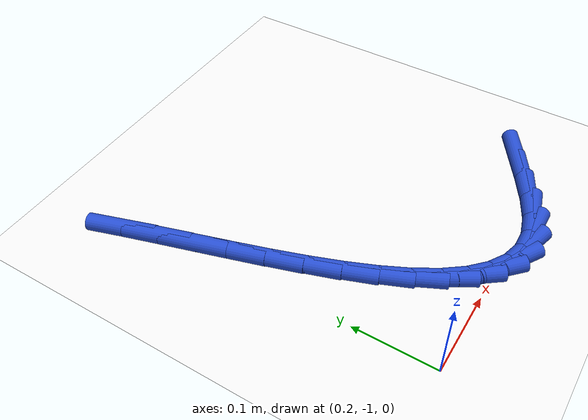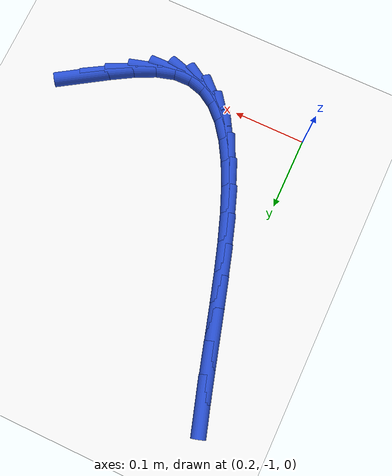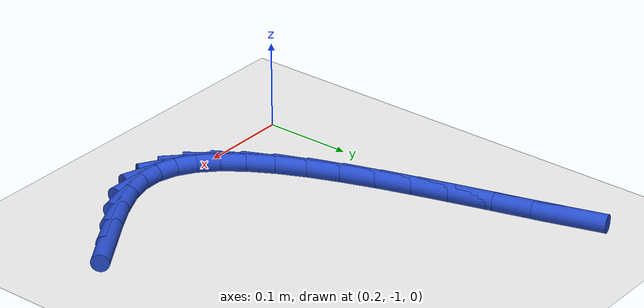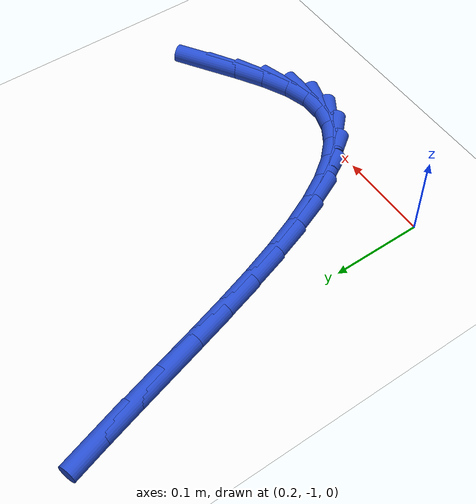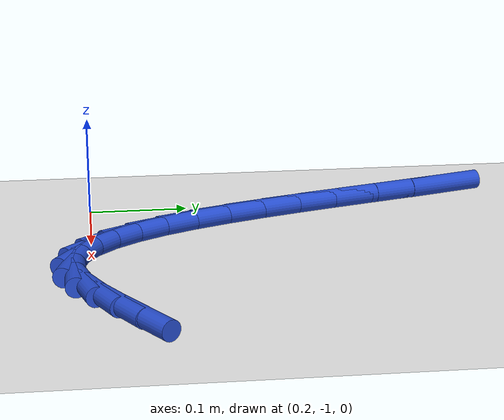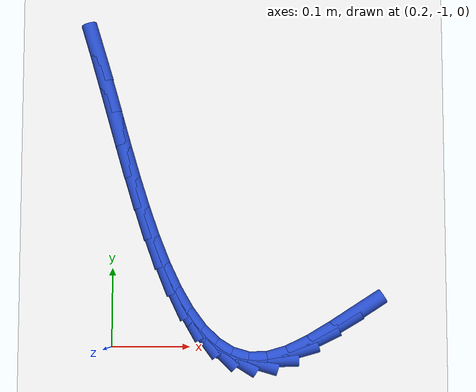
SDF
<sdf version="1.6">
 <world name="default">
  <model name="ground_plane">
   <static>1</static>
   <link name="link">
    <collision name="collision">
     <geometry><plane><normal>0 0 1</normal><size>100 100</size></plane></geometry>
     <surface><friction><ode><mu>100</mu><mu2>50</mu2></ode></friction></surface>
    </collision>
    <visual name="visual">
     <cast_shadows>0</cast_shadows>
     <geometry><plane><normal>0 0 1</normal><size>100 100</size></plane></geometry>
     <material>
      <script><uri>file://media/materials/scripts/gazebo.material</uri><name>Gazebo/WhiteGlow</name></script>
     </material>
    </visual>
   </link>
  </model>
  <model name="line">
   <link name="link_193">
    <pose>0.5134934722347396 -0.9565108255481362 0.01 0 1.57 0.5739904210011332</pose>
    <collision name="collision">
     <geometry><cylinder><radius>0.01</radius><length>0.08</length></cylinder></geometry>
    </collision>
    <visual name="visual">
     <material>
      <script><name>Gazebo/Blue</name><uri>file://media/materials/scripts/gazebo.material</uri></script>
     </material>
     <geometry><cylinder><radius>0.01</radius><length>0.08</length></cylinder></geometry>
    </visual>
   </link>
   <link name="link_194">
    <pose>0.4830046410796609 -0.9762252960613446 0.01 0 1.57 0.5385443087220603</pose>
    <collision name="collision">
     <geometry><cylinder><radius>0.01</radius><length>0.08</length></cylinder></geometry>
    </collision>
    <visual name="visual">
     <material>
      <script><name>Gazebo/Blue</name><uri>file://media/materials/scripts/gazebo.material</uri></script>
     </material>
     <geometry><cylinder><radius>0.01</radius><length>0.08</length></cylinder></geometry>
    </visual>
   </link>
   <link name="link_195">
    <pose>0.453387443628413 -0.9939201677609915 0.01 0 1.57 0.4501257307473294</pose>
    <collision name="collision">
     <geometry><cylinder><radius>0.01</radius><length>0.08</length></cylinder></geometry>
    </collision>
    <visual name="visual">
     <material>
      <script><name>Gazebo/Blue</name><uri>file://media/materials/scripts/gazebo.material</uri></script>
     </material>
     <geometry><cylinder><radius>0.01</radius><length>0.08</length></cylinder></geometry>
    </visual>
   </link>
   <link name="link_196">
    <pose>0.42514363218741064 -1.0075678639565444 0.01 0 1.57 0.2799204717381658</pose>
    <collision name="collision">
     <geometry><cylinder><radius>0.01</radius><length>0.08</length></cylinder></geometry>
    </collision>
    <visual name="visual">
     <material>
      <script><name>Gazebo/Blue</name><uri>file://media/materials/scripts/gazebo.material</uri></script>
     </material>
     <geometry><cylinder><radius>0.01</radius><length>0.08</length></cylinder></geometry>
    </visual>
   </link>
   <link name="link_197">
    <pose>0.39877294177397793 -1.0151485994810188 0.01 0 1.57 0.0141163393528801</pose>
    <collision name="collision">
     <geometry><cylinder><radius>0.01</radius><length>0.08</length></cylinder></geometry>
    </collision>
    <visual name="visual">
     <material>
      <script><name>Gazebo/Blue</name><uri>file://media/materials/scripts/gazebo.material</uri></script>
     </material>
     <geometry><cylinder><radius>0.01</radius><length>0.08</length></cylinder></geometry>
    </visual>
   </link>
   <link name="link_198">
    <pose>0.37455558085034735 -1.0154904826754891 0.01 0 1.57 -0.28365088823868</pose>
    <collision name="collision">
     <geometry><cylinder><radius>0.01</radius><length>0.08</length></cylinder></geometry>
    </collision>
    <visual name="visual">
     <material>
      <script><name>Gazebo/Blue</name><uri>file://media/materials/scripts/gazebo.material</uri></script>
     </material>
     <geometry><cylinder><radius>0.01</radius><length>0.08</length></cylinder></geometry>
    </visual>
   </link>
   <link name="link_199">
    <pose>0.3523580172236851 -1.0090196427459803 0.01 0 1.57 -0.5570878462451241</pose>
    <collision name="collision">
     <geometry><cylinder><radius>0.01</radius><length>0.08</length></cylinder></geometry>
    </collision>
    <visual name="visual">
     <material>
      <script><name>Gazebo/Blue</name><uri>file://media/materials/scripts/gazebo.material</uri></script>
     </material>
     <geometry><cylinder><radius>0.01</radius><length>0.08</length></cylinder></geometry>
    </visual>
   </link>
   <link name="link_200">
    <pose>0.33200089673193645 -0.9963391904496222 0.01 0 1.57 -0.7743373762367641</pose>
    <collision name="collision">
     <geometry><cylinder><radius>0.01</radius><length>0.08</length></cylinder></geometry>
    </collision>
    <visual name="visual">
     <material>
      <script><name>Gazebo/Blue</name><uri>file://media/materials/scripts/gazebo.material</uri></script>
     </material>
     <geometry><cylinder><radius>0.01</radius><length>0.08</length></cylinder></geometry>
    </visual>
   </link>
   <link name="link_201">
    <pose>0.31330486521304673 -0.9780522365435439 0.01 0 1.57 -0.9342966060368153</pose>
    <collision name="collision">
     <geometry><cylinder><radius>0.01</radius><length>0.08</length></cylinder></geometry>
    </collision>
    <visual name="visual">
     <material>
      <script><name>Gazebo/Blue</name><uri>file://media/materials/scripts/gazebo.material</uri></script>
     </material>
     <geometry><cylinder><radius>0.01</radius><length>0.08</length></cylinder></geometry>
    </visual>
   </link>
   <link name="link_202">
    <pose>0.29609056850496246 -0.9547618917848762 0.01 0 1.57 -1.0492387363943598</pose>
    <collision name="collision">
     <geometry><cylinder><radius>0.01</radius><length>0.08</length></cylinder></geometry>
    </collision>
    <visual name="visual">
     <material>
      <script><name>Gazebo/Blue</name><uri>file://media/materials/scripts/gazebo.material</uri></script>
     </material>
     <geometry><cylinder><radius>0.01</radius><length>0.08</length></cylinder></geometry>
    </visual>
   </link>
   <link name="link_203">
    <pose>0.28017865244562856 -0.9270712669307487 0.01 0 1.57 -1.1317053167962414</pose>
    <collision name="collision">
     <geometry><cylinder><radius>0.01</radius><length>0.08</length></cylinder></geometry>
    </collision>
    <visual name="visual">
     <material>
      <script><name>Gazebo/Blue</name><uri>file://media/materials/scripts/gazebo.material</uri></script>
     </material>
     <geometry><cylinder><radius>0.01</radius><length>0.08</length></cylinder></geometry>
    </visual>
   </link>
   <link name="link_204">
    <pose>0.2653897628729906 -0.895583472738291 0.01 0 1.57 -1.1909742833089398</pose>
    <collision name="collision">
     <geometry><cylinder><radius>0.01</radius><length>0.08</length></cylinder></geometry>
    </collision>
    <visual name="visual">
     <material>
      <script><name>Gazebo/Blue</name><uri>file://media/materials/scripts/gazebo.material</uri></script>
     </material>
     <geometry><cylinder><radius>0.01</radius><length>0.08</length></cylinder></geometry>
    </visual>
   </link>
   <link name="link_205">
    <pose>0.25154454562499423 -0.860901619964633 0.01 0 1.57 -1.2332752009832815</pose>
    <collision name="collision">
     <geometry><cylinder><radius>0.01</radius><length>0.08</length></cylinder></geometry>
    </collision>
    <visual name="visual">
     <material>
      <script><name>Gazebo/Blue</name><uri>file://media/materials/scripts/gazebo.material</uri></script>
     </material>
     <geometry><cylinder><radius>0.01</radius><length>0.08</length></cylinder></geometry>
    </visual>
   </link>
   <link name="link_206">
    <pose>0.2384636465395846 -0.8236288193669034 0.01 0 1.57 -1.262653020424444</pose>
    <collision name="collision">
     <geometry><cylinder><radius>0.01</radius><length>0.08</length></cylinder></geometry>
    </collision>
    <visual name="visual">
     <material>
      <script><name>Gazebo/Blue</name><uri>file://media/materials/scripts/gazebo.material</uri></script>
     </material>
     <geometry><cylinder><radius>0.01</radius><length>0.08</length></cylinder></geometry>
    </visual>
   </link>
   <link name="link_207">
    <pose>0.22596771145470798 -0.7843681817022342 0.01 0 1.57 -1.2816724443566965</pose>
    <collision name="collision">
     <geometry><cylinder><radius>0.01</radius><length>0.08</length></cylinder></geometry>
    </collision>
    <visual name="visual">
     <material>
      <script><name>Gazebo/Blue</name><uri>file://media/materials/scripts/gazebo.material</uri></script>
     </material>
     <geometry><cylinder><radius>0.01</radius><length>0.08</length></cylinder></geometry>
    </visual>
   </link>
   <link name="link_208">
    <pose>0.21387738620830948 -0.743722817727754 0.01 0 1.57 -1.2918765932858365</pose>
    <collision name="collision">
     <geometry><cylinder><radius>0.01</radius><length>0.08</length></cylinder></geometry>
    </collision>
    <visual name="visual">
     <material>
      <script><name>Gazebo/Blue</name><uri>file://media/materials/scripts/gazebo.material</uri></script>
     </material>
     <geometry><cylinder><radius>0.01</radius><length>0.08</length></cylinder></geometry>
    </visual>
   </link>
   <link name="link_209">
    <pose>0.20201331663833472 -0.7022958382005928 0.01 0 1.57 -1.294055366964457</pose>
    <collision name="collision">
     <geometry><cylinder><radius>0.01</radius><length>0.08</length></cylinder></geometry>
    </collision>
    <visual name="visual">
     <material>
      <script><name>Gazebo/Blue</name><uri>file://media/materials/scripts/gazebo.material</uri></script>
     </material>
     <geometry><cylinder><radius>0.01</radius><length>0.08</length></cylinder></geometry>
    </visual>
   </link>
   <link name="link_210">
    <pose>0.19019614858272893 -0.6606903538778791 0.01 0 1.57 -1.288378399159458</pose>
    <collision name="collision">
     <geometry><cylinder><radius>0.01</radius><length>0.08</length></cylinder></geometry>
    </collision>
    <visual name="visual">
     <material>
      <script><name>Gazebo/Blue</name><uri>file://media/materials/scripts/gazebo.material</uri></script>
     </material>
     <geometry><cylinder><radius>0.01</radius><length>0.08</length></cylinder></geometry>
    </visual>
   </link>
   <link name="link_211">
    <pose>0.1782465278794382 -0.6195094755167448 0.01 0 1.57 -1.274423505201447</pose>
    <collision name="collision">
     <geometry><cylinder><radius>0.01</radius><length>0.08</length></cylinder></geometry>
    </collision>
    <visual name="visual">
     <material>
      <script><name>Gazebo/Blue</name><uri>file://media/materials/scripts/gazebo.material</uri></script>
     </material>
     <geometry><cylinder><radius>0.01</radius><length>0.08</length></cylinder></geometry>
    </visual>
   </link>
  </model>
 </world>
</sdf>
